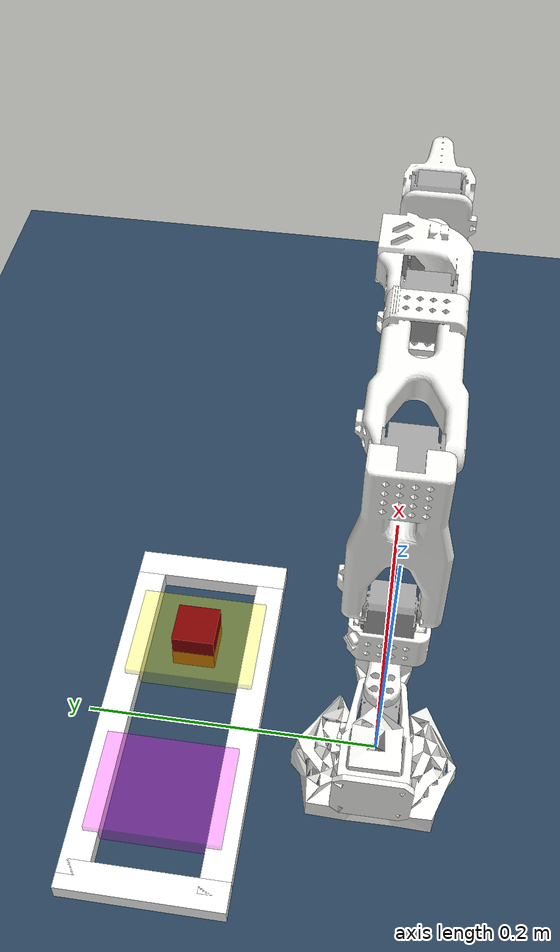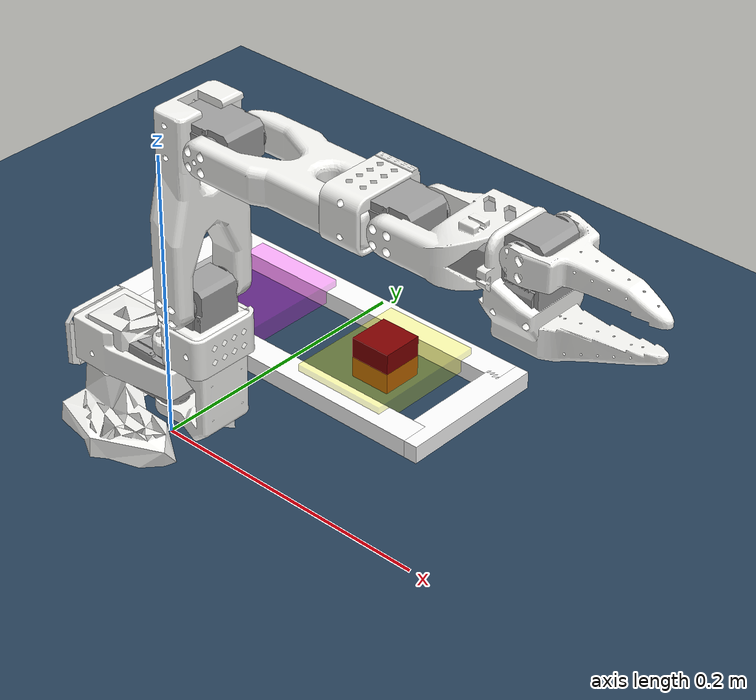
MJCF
<mujoco model="bd1 scene">
	<option timestep="0.002" />
	<option gravity="0 0 -9.81" />

	<compiler angle="radian" autolimits="true" />

	<include file="so101_new_calib.xml" />

	<asset>
		<texture type="skybox" builtin="gradient" rgb1="0.3 0.5 0.7" rgb2="0 0 0" width="512" height="3072" />
		<texture type="2d" name="groundplane" builtin="checker" mark="edge" rgb1="0.2 0.3 0.4" rgb2="0.1 0.2 0.3"
      markrgb="0.8 0.8 0.8" width="300" height="300" />
		<material name="groundplane" texture="groundplane" texuniform="true" texrepeat="5 5" reflectance="0.2" />
	</asset>

	<visual>
		<headlight diffuse="0.6 0.6 0.6" ambient="0.3 0.3 0.3" specular="0 0 0" />
		<rgba haze="0.15 0.25 0.35 1" />
		<global azimuth="150" elevation="-20" offheight="640" />
	</visual>

	<worldbody>
		<light pos="0 0 3" dir="0 0 -1" directional="false" />
		<body name="floor">
			<geom pos="0 0 0" name="floor" size="0 0 .125" type="plane" material="groundplane" solref="0.0 0.0" />
		</body>

		<body name="cube" pos="0.06 0.135 0.017">
			<inertial pos="0 0 0" mass=".05" diaginertia="0.00001125 0.00001125 0.00001125" />
			<geom friction="1.5 1.5 1.5" condim="4" pos="0 0 0" size="0.015 0.015 0.015" type="box" name="cube" rgba="0.5 0 0 1" priority="1" />
		</body>

		<camera name="camera_front" pos="0.049 0.5 0.225" xyaxes="-0.998 0.056 -0.000 -0.019 -0.335 0.942" />
		<camera name="camera_top" pos="0 0.1 0.6" euler="0 0 0" mode="fixed" />
		<camera name="camera_vizu" pos="-0.1 0.6 0.3" quat="-0.15 -0.1 0.6 1" />

		<!-- Goal Region 1 -->
		<geom name="goal_region_1" type="box" pos=".06 .135 0.01" size="0.035 0.045 0.007" rgba="1 1 0 0.3" contype="0" conaffinity="0" />

		<!-- Goal Region 2 -->
		<geom name="goal_region_2" type="box" pos="-.06 .135 0.01" size="0.035 0.045 0.007" rgba="1 0 1 0.3" contype="0" conaffinity="0" />

		<!-- Define the rails that contain the cube -->
		<geom name="left_wall" type="box" pos="-0.125 0.135 0.005" size="0.01 0.055 0.007" rgba="1 1 1 1" />
		<geom name="right_wall" type="box" pos="0.125 0.135 0.005" size="0.01 0.055 0.007" rgba="1 1 1 1" />
		<geom name="top_wall" type="box" pos="0 0.09 0.005" size="0.125 0.01 0.007" rgba="1 1 1 1" />
		<geom name="bottom_wall" type="box" pos="0 0.18 0.005" size="0.125 0.01 0.007" rgba="1 1 1 1" />

	</worldbody>

    <keyframe>
        <key name="home" qpos="0 -3.14 3.14 0.817 0 -0.157 0.06 0.135 0.017 1 0 0 0" ctrl="0 -3.14 3.14 0.817 0 -0.157"/>
    </keyframe>

</mujoco>

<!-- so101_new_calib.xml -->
<!-- Generated using onshape-to-robot -->
<!-- Onshape https://cad.onshape.com/documents/7715cc284bb430fe6dab4ffd/w/4fd0791b683777b02f8d975a/e/826c553ede3b7592eb9ca800 -->
<mujoco model="so101_new_calib">
  <compiler angle="radian" meshdir="assets" autolimits="true"/>
  <default>
    <default class="so101_new_calib">
      <joint frictionloss="0.1" armature="0.005"/>
      <position kp="50" dampratio="1"/>
      <default class="visual">
        <geom type="mesh" contype="0" conaffinity="0" group="2"/>
      </default>
      <default class="collision">
        <geom group="3"/>
      </default>
    </default>
  </default>
  <!-- Additional joints_properties.xml -->
  <default>
    <default class="sts3215">
      <geom contype="0" conaffinity="0"/>
      <joint damping="0.60" frictionloss="0.052" armature="0.028"/>
      <position kp="17.8" kv="0.0" forcerange="-3.35 3.35"/>
    </default>
    <default class="backlash">
      <!-- +/- 0.5° of backlash -->
      <joint damping="0.01" frictionloss="0" armature="0.01" limited="true" range="-0.008726646259971648 0.008726646259971648"/>
    </default>
  </default>
  <worldbody>
    <!-- Link base -->
    <!-- Definition position and orientation of lerobot -->
    <body name="base" pos="-0.02 -0.02 -0.03" quat="1 0 0 1" childclass="so101_new_calib">
    <!-- Origin-simulation -->
    <!-- make base can be changed  -->

    <!-- make base can be changed  -->
    <joint type="free"/>
      <inertial pos="0.020739 0.00204287 0.065966" mass="0.147" fullinertia="0.000136117 0.000114686 0.000130364 4.59787e-07 9.75275e-08 -4.97151e-06"/>
      <!-- Part base_motor_holder_so101_v1 -->
      <geom type="mesh" class="visual" pos="0.0206915 0.0221255 0.0300817" quat="0.707107 0.707107 7.85046e-16 8.68107e-16" mesh="base_motor_holder_so101_v1" material="base_motor_holder_so101_v1_material"/>
      <!-- Part base_so101_v2 -->
      <geom type="mesh" class="visual" pos="0.0207909 0.0221255 0.0300817" quat="0.707107 0.707107 -0 -0" mesh="base_so101_v2" material="base_so101_v2_material"/>
      <!-- Part sts3215_03a_v1 -->
      <geom type="mesh" class="visual" pos="0.0207909 -0.0105745 0.0761817" quat="0.707107 -7.69919e-16 8.95976e-16 -0.707107" mesh="sts3215_03a_v1" material="sts3215_03a_v1_material"/>
      <!-- Part waveshare_mounting_plate_so101_v2 -->
      <geom type="mesh" class="visual" pos="0.0205915 0.0467435 0.0798817" quat="0.707107 0.707107 -3.34318e-15 5.1276e-15" mesh="waveshare_mounting_plate_so101_v2" material="waveshare_mounting_plate_so101_v2_material"/>
      <!-- Frame base -->
      <site group="3" name="base" pos="0.020791 0.0157608 0.0324817" quat="0 1 0 0"/>
      <!-- Link shoulder -->
      <body name="shoulder" pos="0.0207909 -0.0230745 0.0948817" quat="7.88629e-16 -0.707107 -0.707107 7.69003e-16">
        <!-- Joint from base to shoulder -->
        <joint axis="0 0 1" name="1" type="hinge" range="-1.9198621771937616 1.9198621771937634" class="sts3215"/>
        <inertial pos="-0.0307604 -1.66727e-05 -0.0252713" mass="0.100006" fullinertia="8.3759e-05 8.10403e-05 2.39783e-05 7.55525e-08 -1.16342e-06 1.54663e-07"/>
        <!-- Part sts3215_03a_v1_2 -->
        <geom type="mesh" class="visual" pos="-0.0303992 0.000422241 -0.0417" quat="0.5 0.5 0.5 -0.5" mesh="sts3215_03a_v1" material="sts3215_03a_v1_material"/>
        <geom type="mesh" class="collision" pos="-0.0303992 0.000422241 -0.0417" quat="0.5 0.5 0.5 -0.5" mesh="sts3215_03a_v1" material="sts3215_03a_v1_material"/>
        <!-- Part motor_holder_so101_base_v1 -->
        <geom type="mesh" class="visual" pos="-0.0675992 -0.000177759 0.0158499" quat="0.5 0.5 -0.5 0.5" mesh="motor_holder_so101_base_v1" material="motor_holder_so101_base_v1_material"/>
        <geom type="mesh" class="collision" pos="-0.0675992 -0.000177759 0.0158499" quat="0.5 0.5 -0.5 0.5" mesh="motor_holder_so101_base_v1" material="motor_holder_so101_base_v1_material"/>
        <!-- Part rotation_pitch_so101_v1 -->
        <geom type="mesh" class="visual" pos="0.0122008 2.22413e-05 0.0464" quat="0.707107 -0.707107 0 0" mesh="rotation_pitch_so101_v1" material="rotation_pitch_so101_v1_material"/>
        <geom type="mesh" class="collision" pos="0.0122008 2.22413e-05 0.0464" quat="0.707107 -0.707107 0 0" mesh="rotation_pitch_so101_v1" material="rotation_pitch_so101_v1_material"/>
        <!-- Link upper_arm -->
        <body name="upper_arm" pos="-0.0303992 -0.0182778 -0.0542" quat="0.5 -0.5 -0.5 -0.5">
          <!-- Joint from shoulder to upper_arm -->
          <joint axis="0 0 1" name="2" type="hinge" range="-1.7453292519943269 1.7453292519943322" class="sts3215"/>
          <inertial pos="-0.0898471 -0.00838224 0.0184089" mass="0.103" fullinertia="4.08002e-05 0.000147318 0.000142487 -1.97819e-05 -4.03016e-08 8.97326e-09"/>
          <!-- Part sts3215_03a_v1_3 -->
          <geom type="mesh" class="visual" pos="-0.11257 -0.0155 0.0187" quat="4.31775e-16 -0.707107 0.707107 -2.94392e-16" mesh="sts3215_03a_v1" material="sts3215_03a_v1_material"/>
          <geom type="mesh" class="collision" pos="-0.11257 -0.0155 0.0187" quat="4.31775e-16 -0.707107 0.707107 -2.94392e-16" mesh="sts3215_03a_v1" material="sts3215_03a_v1_material"/>
          <!-- Part upper_arm_so101_v1 -->
          <geom type="mesh" class="visual" pos="-0.065085 0.012 0.0182" quat="0 1 0 0" mesh="upper_arm_so101_v1" material="upper_arm_so101_v1_material"/>
          <geom type="mesh" class="collision" pos="-0.065085 0.012 0.0182" quat="0 1 0 0" mesh="upper_arm_so101_v1" material="upper_arm_so101_v1_material"/>
          <!-- Link lower_arm -->
          <body name="lower_arm" pos="-0.11257 -0.028 2.46331e-16" quat="0.707107 -2.94392e-16 -3.85906e-16 0.707107">
            <!-- Joint from upper_arm to lower_arm -->
            <joint axis="0 0 1" name="3" type="hinge" range="-1.7453292519943295 1.5707963267948966" class="sts3215"/>
            <inertial pos="-0.0980701 0.00324376 0.0182831" mass="0.104" fullinertia="2.87438e-05 0.000159844 0.00014529 7.41152e-06 1.26409e-06 -4.90188e-08"/>
            <!-- Part under_arm_so101_v1 -->
            <geom type="mesh" class="visual" pos="-0.0648499 -0.032 0.0182" quat="0 1 0 0" mesh="under_arm_so101_v1" material="under_arm_so101_v1_material"/>
            <geom type="mesh" class="collision" pos="-0.0648499 -0.032 0.0182" quat="0 1 0 0" mesh="under_arm_so101_v1" material="under_arm_so101_v1_material"/>
            <!-- Part motor_holder_so101_wrist_v1 -->
            <geom type="mesh" class="visual" pos="-0.0648499 -0.032 0.018" quat="3.3891e-16 -1 -1.9186e-15 6.33174e-16" mesh="motor_holder_so101_wrist_v1" material="motor_holder_so101_wrist_v1_material"/>
            <geom type="mesh" class="collision" pos="-0.0648499 -0.032 0.018" quat="3.3891e-16 -1 -1.9186e-15 6.33174e-16" mesh="motor_holder_so101_wrist_v1" material="motor_holder_so101_wrist_v1_material"/>
            <!-- Part sts3215_03a_v1_4 -->
            <geom type="mesh" class="visual" pos="-0.1224 0.0052 0.0187" quat="8.32667e-16 -1.56949e-15 -1 5.55112e-16" mesh="sts3215_03a_v1" material="sts3215_03a_v1_material"/>
            <geom type="mesh" class="collision" pos="-0.1224 0.0052 0.0187" quat="8.32667e-16 -1.56949e-15 -1 5.55112e-16" mesh="sts3215_03a_v1" material="sts3215_03a_v1_material"/>
            <!-- Link wrist -->
            <body name="wrist" pos="-0.1349 0.0052 1.65232e-16" quat="0.707107 1.31614e-15 9.90601e-17 -0.707107">
              <!-- Joint from lower_arm to wrist -->
              <joint axis="0 0 1" name="4" type="hinge" range="-1.6580627969561903 1.658062781833036" class="sts3215"/>
              <inertial pos="-0.000103312 -0.0386143 0.0281156" mass="0.079" fullinertia="3.68263e-05 2.5391e-05 2.1e-05 1.7893e-08 -5.28128e-08 3.6412e-06"/>
              <!-- Part sts3215_03a_no_horn_v1 -->
              <geom type="mesh" class="visual" pos="5.55112e-17 -0.0424 0.0306" quat="0.5 0.5 0.5 -0.5" mesh="sts3215_03a_no_horn_v1" material="sts3215_03a_no_horn_v1_material"/>
              <geom type="mesh" class="collision" pos="5.55112e-17 -0.0424 0.0306" quat="0.5 0.5 0.5 -0.5" mesh="sts3215_03a_no_horn_v1" material="sts3215_03a_no_horn_v1_material"/>
              <!-- Part wrist_roll_pitch_so101_v2 -->
              <geom type="mesh" class="visual" pos="0 -0.028 0.0181" quat="0.5 -0.5 -0.5 -0.5" mesh="wrist_roll_pitch_so101_v2" material="wrist_roll_pitch_so101_v2_material"/>
              <geom type="mesh" class="collision" pos="0 -0.028 0.0181" quat="0.5 -0.5 -0.5 -0.5" mesh="wrist_roll_pitch_so101_v2" material="wrist_roll_pitch_so101_v2_material"/>
              <!-- Link gripper -->
              <body name="gripper" pos="0 -0.0611 0.0181" quat="3.31663e-08 -3.31663e-08 -0.707107 -0.707107">
                <!-- Joint from wrist to gripper -->
                <joint axis="0 0 1" name="5" type="hinge" range="-2.7925268969992407 2.7925267093826136" class="sts3215"/>
                <inertial pos="0.000213627 0.000245138 -0.025187" mass="0.087" fullinertia="2.75087e-05 4.33657e-05 3.45059e-05 -3.35241e-07 -5.7352e-06 -5.17847e-08"/>
                <!-- Part sts3215_03a_v1_5 -->
                <geom type="mesh" class="visual" pos="0.0077 0.0001 -0.0234" quat="0.707107 -0.707107 6.48145e-15 1.58472e-15" mesh="sts3215_03a_v1" material="sts3215_03a_v1_material"/>
                <geom type="mesh" class="collision" pos="0.0077 0.0001 -0.0234" quat="0.707107 -0.707107 6.48145e-15 1.58472e-15" mesh="sts3215_03a_v1" material="sts3215_03a_v1_material"/>
                <!-- Part wrist_roll_follower_so101_v1 -->
                <geom type="mesh" class="visual" pos="5.55112e-17 -0.000218214 0.000949706" quat="0 1 0 0" mesh="wrist_roll_follower_so101_v1" material="wrist_roll_follower_so101_v1_material"/>
                <geom type="mesh" class="collision" pos="5.55112e-17 -0.000218214 0.000949706" quat="0 1 0 0" mesh="wrist_roll_follower_so101_v1" material="wrist_roll_follower_so101_v1_material"/>
                <!-- Frame gripper -->
                <site group="3" name="gripper" pos="-0.0079 -0.000218121 -0.0981274" quat="0.5 -0.5 0.5 -0.5"/>
                <!-- Link moving_jaw_so101_v1 -->
                <body name="moving_jaw_so101_v1" pos="0.0202 0.0188 -0.0234" quat="0.707107 0.707107 1.47485e-15 -6.52758e-15">
                  <!-- Joint from gripper to moving_jaw_so101_v1 -->
                  <joint axis="0 0 1" name="6" type="hinge" range="-0.17453292519943295 1.7453292519943295" class="sts3215"/>
                  <inertial pos="-0.00157495 -0.0300244 0.0192755" mass="0.012" fullinertia="6.61427e-06 1.89032e-06 5.28738e-06 -3.19807e-07 -5.90717e-09 -1.09945e-07"/>
                  <!-- Part moving_jaw_so101_v1 -->
                  <geom type="mesh" class="visual" pos="-5.55112e-17 -1.94746e-17 0.0189" quat="1 -0 1.86338e-16 6.90343e-24" mesh="moving_jaw_so101_v1" material="moving_jaw_so101_v1_material"/>
                  <geom type="mesh" class="collision" pos="-5.55112e-17 -1.94746e-17 0.0189" quat="1 -0 1.86338e-16 6.90343e-24" mesh="moving_jaw_so101_v1" material="moving_jaw_so101_v1_material"/>
                </body>
              </body>
            </body>
          </body>
        </body>
      </body>
    </body>
  </worldbody>
  <asset>
    <mesh file="rotation_pitch_so101_v1.stl"/>
    <mesh file="moving_jaw_so101_v1.stl"/>
    <mesh file="sts3215_03a_v1.stl"/>
    <mesh file="motor_holder_so101_wrist_v1.stl"/>
    <mesh file="wrist_roll_follower_so101_v1.stl"/>
    <mesh file="base_so101_v2.stl"/>
    <mesh file="under_arm_so101_v1.stl"/>
    <mesh file="wrist_roll_pitch_so101_v2.stl"/>
    <mesh file="waveshare_mounting_plate_so101_v2.stl"/>
    <mesh file="sts3215_03a_no_horn_v1.stl"/>
    <mesh file="motor_holder_so101_base_v1.stl"/>
    <mesh file="base_motor_holder_so101_v1.stl"/>
    <mesh file="upper_arm_so101_v1.stl"/>
    <material name="base_motor_holder_so101_v1_material" rgba="0.964706 0.964706 0.952941 1"/>
    <material name="base_so101_v2_material" rgba="0.964706 0.964706 0.952941 1"/>
    <material name="sts3215_03a_v1_material" rgba="0.627451 0.627451 0.627451 1"/>
    <material name="waveshare_mounting_plate_so101_v2_material" rgba="0.964706 0.964706 0.952941 1"/>
    <material name="motor_holder_so101_base_v1_material" rgba="0.964706 0.964706 0.952941 1"/>
    <material name="rotation_pitch_so101_v1_material" rgba="0.964706 0.964706 0.952941 1"/>
    <material name="upper_arm_so101_v1_material" rgba="0.964706 0.964706 0.952941 1"/>
    <material name="under_arm_so101_v1_material" rgba="0.964706 0.964706 0.952941 1"/>
    <material name="motor_holder_so101_wrist_v1_material" rgba="0.964706 0.964706 0.952941 1"/>
    <material name="sts3215_03a_no_horn_v1_material" rgba="0.627451 0.627451 0.627451 1"/>
    <material name="wrist_roll_pitch_so101_v2_material" rgba="0.964706 0.964706 0.952941 1"/>
    <material name="wrist_roll_follower_so101_v1_material" rgba="0.964706 0.964706 0.952941 1"/>
    <material name="moving_jaw_so101_v1_material" rgba="0.964706 0.964706 0.952941 1"/>
  </asset>
  <actuator>
    <position class="sts3215" name="1" joint="1" inheritrange="1"/>
    <position class="sts3215" name="2" joint="2" inheritrange="1"/>
    <position class="sts3215" name="3" joint="3" inheritrange="1"/>
    <position class="sts3215" name="4" joint="4" inheritrange="1"/>
    <position class="sts3215" name="5" joint="5" inheritrange="1"/>
    <position class="sts3215" name="6" joint="6" inheritrange="1"/>
  </actuator>
  <equality/>
</mujoco>
